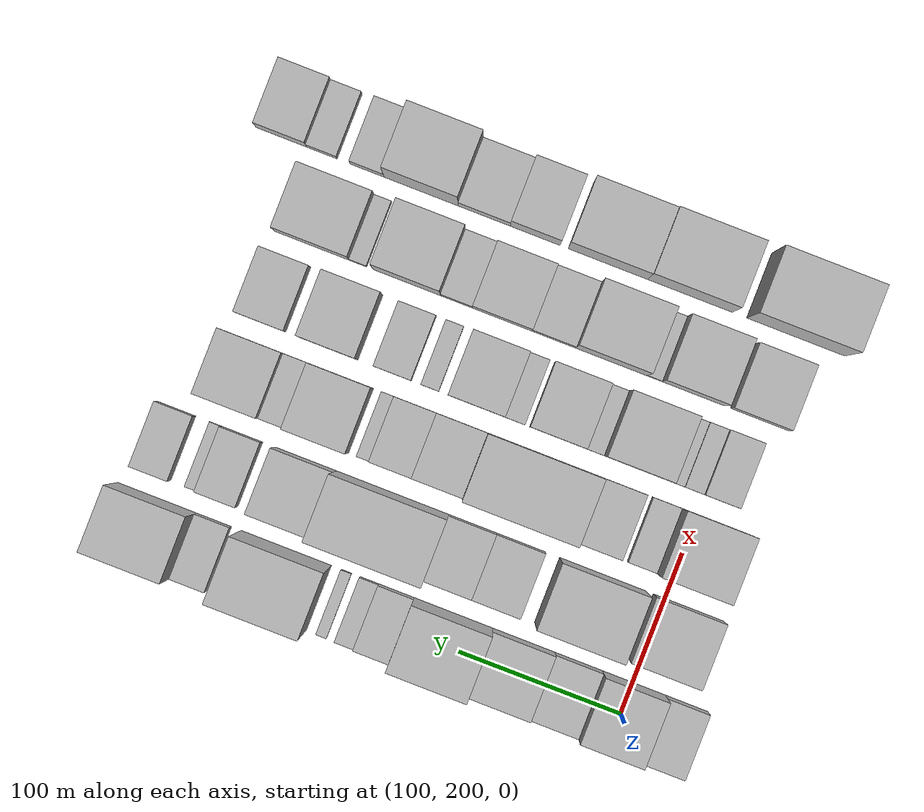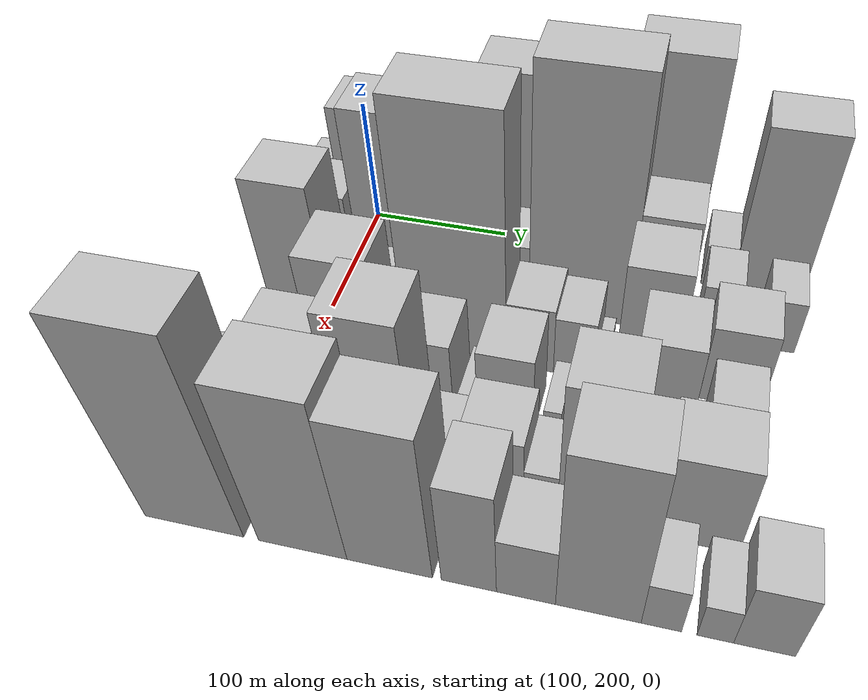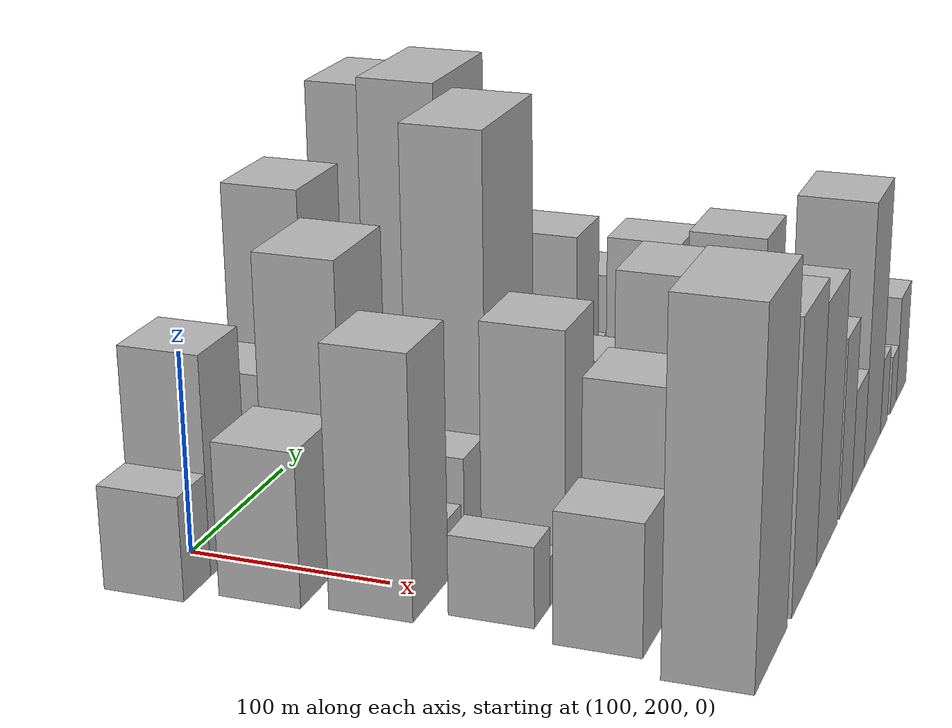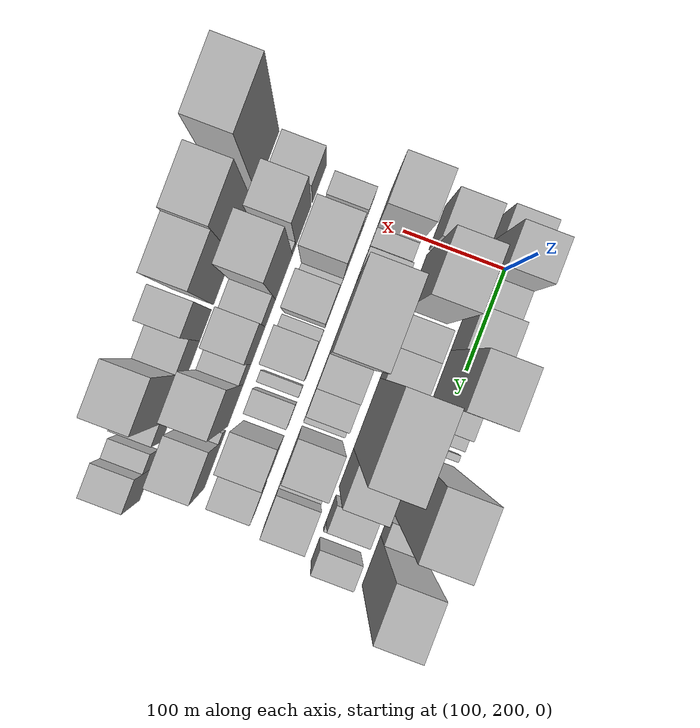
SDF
<sdf version="1.6">
 <world name="default">
  <model name="building_30">
   <static>1</static>
   <pose>100.0000 166.9720 0 0.000000 0.000000 0.000000</pose>
   <link name="link">
    <pose>0 0 25.50 0 0 0</pose>
    <collision name="collision"><geometry><box><size>40.0000 26.2428 51.0000</size></box></geometry></collision>
    <visual name="visual">
     <cast_shadows>0</cast_shadows>
     <geometry><box><size>40.0000 26.2428 51.0000</size></box></geometry>
     <material>
      <script>
       <uri>model://HANNAS_wall/materials/scripts</uri>
       <uri>model://HANNAS_wall/materials/textures</uri>
       <name>vrc/HANNAS_wall</name>
      </script>
     </material>
    </visual>
   </link>
  </model>
  <model name="building_31">
   <static>1</static>
   <pose>100.0000 199.5539 0 0.000000 0.000000 0.000000</pose>
   <link name="link">
    <pose>0 0 54.00 0 0 0</pose>
    <collision name="collision"><geometry><box><size>40.0000 38.9211 108.0000</size></box></geometry></collision>
    <visual name="visual">
     <cast_shadows>0</cast_shadows>
     <geometry><box><size>40.0000 38.9211 108.0000</size></box></geometry>
     <material>
      <script>
       <uri>model://HANNAS_wall/materials/scripts</uri>
       <uri>model://HANNAS_wall/materials/textures</uri>
       <name>vrc/HANNAS_wall</name>
      </script>
     </material>
    </visual>
   </link>
  </model>
  <model name="building_32">
   <static>1</static>
   <pose>100.0000 233.7034 0 0.000000 0.000000 0.000000</pose>
   <link name="link">
    <pose>0 0 25.50 0 0 0</pose>
    <collision name="collision"><geometry><box><size>40.0000 29.3780 51.0000</size></box></geometry></collision>
    <visual name="visual">
     <cast_shadows>0</cast_shadows>
     <geometry><box><size>40.0000 29.3780 51.0000</size></box></geometry>
     <material>
      <script>
       <uri>model://HANNAS_wall/materials/scripts</uri>
       <uri>model://HANNAS_wall/materials/textures</uri>
       <name>vrc/HANNAS_wall</name>
      </script>
     </material>
    </visual>
   </link>
  </model>
  <model name="building_33">
   <static>1</static>
   <pose>100.0000 267.7896 0 0.000000 0.000000 0.000000</pose>
   <link name="link">
    <pose>0 0 36.00 0 0 0</pose>
    <collision name="collision"><geometry><box><size>40.0000 38.7943 72.0000</size></box></geometry></collision>
    <visual name="visual">
     <cast_shadows>0</cast_shadows>
     <geometry><box><size>40.0000 38.7943 72.0000</size></box></geometry>
     <material>
      <script>
       <uri>model://HANNAS_wall/materials/scripts</uri>
       <uri>model://HANNAS_wall/materials/textures</uri>
       <name>vrc/HANNAS_wall</name>
      </script>
     </material>
    </visual>
   </link>
  </model>
  <model name="building_34">
   <static>1</static>
   <pose>100.0000 311.4002 0 0.000000 0.000000 0.000000</pose>
   <link name="link">
    <pose>0 0 76.50 0 0 0</pose>
    <collision name="collision"><geometry><box><size>40.0000 48.4269 153.0000</size></box></geometry></collision>
    <visual name="visual">
     <cast_shadows>0</cast_shadows>
     <geometry><box><size>40.0000 48.4269 153.0000</size></box></geometry>
     <material>
      <script>
       <uri>model://HANNAS_wall/materials/scripts</uri>
       <uri>model://HANNAS_wall/materials/textures</uri>
       <name>vrc/HANNAS_wall</name>
      </script>
     </material>
    </visual>
   </link>
  </model>
  <model name="building_35">
   <static>1</static>
   <pose>100.0000 346.5541 0 0.000000 0.000000 0.000000</pose>
   <link name="link">
    <pose>0 0 21.00 0 0 0</pose>
    <collision name="collision"><geometry><box><size>40.0000 21.8810 42.0000</size></box></geometry></collision>
    <visual name="visual">
     <cast_shadows>0</cast_shadows>
     <geometry><box><size>40.0000 21.8810 42.0000</size></box></geometry>
     <material>
      <script>
       <uri>model://HANNAS_wall/materials/scripts</uri>
       <uri>model://HANNAS_wall/materials/textures</uri>
       <name>vrc/HANNAS_wall</name>
      </script>
     </material>
    </visual>
   </link>
  </model>
  <model name="building_36">
   <static>1</static>
   <pose>100.0000 363.3798 0 0.000000 0.000000 0.000000</pose>
   <link name="link">
    <pose>0 0 12.00 0 0 0</pose>
    <collision name="collision"><geometry><box><size>40.0000 11.7702 24.0000</size></box></geometry></collision>
    <visual name="visual">
     <cast_shadows>0</cast_shadows>
     <geometry><box><size>40.0000 11.7702 24.0000</size></box></geometry>
     <material>
      <script>
       <uri>model://HANNAS_wall/materials/scripts</uri>
       <uri>model://HANNAS_wall/materials/textures</uri>
       <name>vrc/HANNAS_wall</name>
      </script>
     </material>
    </visual>
   </link>
  </model>
  <model name="building_37">
   <static>1</static>
   <pose>100.0000 377.5554 0 0.000000 0.000000 0.000000</pose>
   <link name="link">
    <pose>0 0 7.50 0 0 0</pose>
    <collision name="collision"><geometry><box><size>40.0000 6.5810 15.0000</size></box></geometry></collision>
    <visual name="visual">
     <cast_shadows>0</cast_shadows>
     <geometry><box><size>40.0000 6.5810 15.0000</size></box></geometry>
     <material>
      <script>
       <uri>model://HANNAS_wall/materials/scripts</uri>
       <uri>model://HANNAS_wall/materials/textures</uri>
       <name>vrc/HANNAS_wall</name>
      </script>
     </material>
    </visual>
   </link>
  </model>
  <model name="building_38">
   <static>1</static>
   <pose>100.0000 414.7971 0 0.000000 0.000000 0.000000</pose>
   <link name="link">
    <pose>0 0 90.00 0 0 0</pose>
    <collision name="collision"><geometry><box><size>40.0000 55.9024 180.0000</size></box></geometry></collision>
    <visual name="visual">
     <cast_shadows>0</cast_shadows>
     <geometry><box><size>40.0000 55.9024 180.0000</size></box></geometry>
     <material>
      <script>
       <uri>model://HANNAS_wall/materials/scripts</uri>
       <uri>model://HANNAS_wall/materials/textures</uri>
       <name>vrc/HANNAS_wall</name>
      </script>
     </material>
    </visual>
   </link>
  </model>
  <model name="building_39">
   <static>1</static>
   <pose>100.0000 459.5470 0 0.000000 0.000000 0.000000</pose>
   <link name="link">
    <pose>0 0 18.00 0 0 0</pose>
    <collision name="collision"><geometry><box><size>40.0000 21.5973 36.0000</size></box></geometry></collision>
    <visual name="visual">
     <cast_shadows>0</cast_shadows>
     <geometry><box><size>40.0000 21.5973 36.0000</size></box></geometry>
     <material>
      <script>
       <uri>model://HANNAS_wall/materials/scripts</uri>
       <uri>model://HANNAS_wall/materials/textures</uri>
       <name>vrc/HANNAS_wall</name>
      </script>
     </material>
    </visual>
   </link>
  </model>
  <model name="building_40">
   <static>1</static>
   <pose>100.0000 494.8521 0 0.000000 0.000000 0.000000</pose>
   <link name="link">
    <pose>0 0 69.00 0 0 0</pose>
    <collision name="collision"><geometry><box><size>40.0000 49.0130 138.0000</size></box></geometry></collision>
    <visual name="visual">
     <cast_shadows>0</cast_shadows>
     <geometry><box><size>40.0000 49.0130 138.0000</size></box></geometry>
     <material>
      <script>
       <uri>model://HANNAS_wall/materials/scripts</uri>
       <uri>model://HANNAS_wall/materials/textures</uri>
       <name>vrc/HANNAS_wall</name>
      </script>
     </material>
    </visual>
   </link>
  </model>
  <model name="building_85">
   <static>1</static>
   <pose>152.0000 186.0106 0 0.000000 0.000000 0.000000</pose>
   <link name="link">
    <pose>0 0 37.50 0 0 0</pose>
    <collision name="collision"><geometry><box><size>40.0000 43.1847 75.0000</size></box></geometry></collision>
    <visual name="visual">
     <cast_shadows>0</cast_shadows>
     <geometry><box><size>40.0000 43.1847 75.0000</size></box></geometry>
     <material>
      <script>
       <uri>model://HANNAS_wall/materials/scripts</uri>
       <uri>model://HANNAS_wall/materials/textures</uri>
       <name>vrc/HANNAS_wall</name>
      </script>
     </material>
    </visual>
   </link>
  </model>
  <model name="building_86">
   <static>1</static>
   <pose>152.0000 239.1470 0 0.000000 0.000000 0.000000</pose>
   <link name="link">
    <pose>0 0 73.50 0 0 0</pose>
    <collision name="collision"><geometry><box><size>40.0000 53.0880 147.0000</size></box></geometry></collision>
    <visual name="visual">
     <cast_shadows>0</cast_shadows>
     <geometry><box><size>40.0000 53.0880 147.0000</size></box></geometry>
     <material>
      <script>
       <uri>model://HANNAS_wall/materials/scripts</uri>
       <uri>model://HANNAS_wall/materials/textures</uri>
       <name>vrc/HANNAS_wall</name>
      </script>
     </material>
    </visual>
   </link>
  </model>
  <model name="building_87">
   <static>1</static>
   <pose>152.0000 289.6526 0 0.000000 0.000000 0.000000</pose>
   <link name="link">
    <pose>0 0 28.50 0 0 0</pose>
    <collision name="collision"><geometry><box><size>40.0000 29.9232 57.0000</size></box></geometry></collision>
    <visual name="visual">
     <cast_shadows>0</cast_shadows>
     <geometry><box><size>40.0000 29.9232 57.0000</size></box></geometry>
     <material>
      <script>
       <uri>model://HANNAS_wall/materials/scripts</uri>
       <uri>model://HANNAS_wall/materials/textures</uri>
       <name>vrc/HANNAS_wall</name>
      </script>
     </material>
    </visual>
   </link>
  </model>
  <model name="building_88">
   <static>1</static>
   <pose>152.0000 319.4097 0 0.000000 0.000000 0.000000</pose>
   <link name="link">
    <pose>0 0 28.50 0 0 0</pose>
    <collision name="collision"><geometry><box><size>40.0000 29.5909 57.0000</size></box></geometry></collision>
    <visual name="visual">
     <cast_shadows>0</cast_shadows>
     <geometry><box><size>40.0000 29.5909 57.0000</size></box></geometry>
     <material>
      <script>
       <uri>model://HANNAS_wall/materials/scripts</uri>
       <uri>model://HANNAS_wall/materials/textures</uri>
       <name>vrc/HANNAS_wall</name>
      </script>
     </material>
    </visual>
   </link>
  </model>
  <model name="building_89">
   <static>1</static>
   <pose>152.0000 368.9852 0 0.000000 0.000000 0.000000</pose>
   <link name="link">
    <pose>0 0 99.00 0 0 0</pose>
    <collision name="collision"><geometry><box><size>40.0000 69.5601 198.0000</size></box></geometry></collision>
    <visual name="visual">
     <cast_shadows>0</cast_shadows>
     <geometry><box><size>40.0000 69.5601 198.0000</size></box></geometry>
     <material>
      <script>
       <uri>model://HANNAS_wall/materials/scripts</uri>
       <uri>model://HANNAS_wall/materials/textures</uri>
       <name>vrc/HANNAS_wall</name>
      </script>
     </material>
    </visual>
   </link>
  </model>
  <model name="building_90">
   <static>1</static>
   <pose>152.0000 422.6692 0 0.000000 0.000000 0.000000</pose>
   <link name="link">
    <pose>0 0 49.50 0 0 0</pose>
    <collision name="collision"><geometry><box><size>40.0000 37.8078 99.0000</size></box></geometry></collision>
    <visual name="visual">
     <cast_shadows>0</cast_shadows>
     <geometry><box><size>40.0000 37.8078 99.0000</size></box></geometry>
     <material>
      <script>
       <uri>model://HANNAS_wall/materials/scripts</uri>
       <uri>model://HANNAS_wall/materials/textures</uri>
       <name>vrc/HANNAS_wall</name>
      </script>
     </material>
    </visual>
   </link>
  </model>
  <model name="building_91">
   <static>1</static>
   <pose>152.0000 462.1585 0 0.000000 0.000000 0.000000</pose>
   <link name="link">
    <pose>0 0 24.00 0 0 0</pose>
    <collision name="collision"><geometry><box><size>40.0000 25.1708 48.0000</size></box></geometry></collision>
    <visual name="visual">
     <cast_shadows>0</cast_shadows>
     <geometry><box><size>40.0000 25.1708 48.0000</size></box></geometry>
     <material>
      <script>
       <uri>model://HANNAS_wall/materials/scripts</uri>
       <uri>model://HANNAS_wall/materials/textures</uri>
       <name>vrc/HANNAS_wall</name>
      </script>
     </material>
    </visual>
   </link>
  </model>
  <model name="building_92">
   <static>1</static>
   <pose>152.0000 478.4570 0 0.000000 0.000000 0.000000</pose>
   <link name="link">
    <pose>0 0 7.50 0 0 0</pose>
    <collision name="collision"><geometry><box><size>40.0000 7.4263 15.0000</size></box></geometry></collision>
    <visual name="visual">
     <cast_shadows>0</cast_shadows>
     <geometry><box><size>40.0000 7.4263 15.0000</size></box></geometry>
     <material>
      <script>
       <uri>model://HANNAS_wall/materials/scripts</uri>
       <uri>model://HANNAS_wall/materials/textures</uri>
       <name>vrc/HANNAS_wall</name>
      </script>
     </material>
    </visual>
   </link>
  </model>
  <model name="building_93">
   <static>1</static>
   <pose>152.0000 502.9970 0 0.000000 0.000000 0.000000</pose>
   <link name="link">
    <pose>0 0 22.50 0 0 0</pose>
    <collision name="collision"><geometry><box><size>40.0000 23.6538 45.0000</size></box></geometry></collision>
    <visual name="visual">
     <cast_shadows>0</cast_shadows>
     <geometry><box><size>40.0000 23.6538 45.0000</size></box></geometry>
     <material>
      <script>
       <uri>model://HANNAS_wall/materials/scripts</uri>
       <uri>model://HANNAS_wall/materials/textures</uri>
       <name>vrc/HANNAS_wall</name>
      </script>
     </material>
    </visual>
   </link>
  </model>
  <model name="building_134">
   <static>1</static>
   <pose>204.0000 189.3628 0 0.000000 0.000000 0.000000</pose>
   <link name="link">
    <pose>0 0 63.00 0 0 0</pose>
    <collision name="collision"><geometry><box><size>40.0000 42.7642 126.0000</size></box></geometry></collision>
    <visual name="visual">
     <cast_shadows>0</cast_shadows>
     <geometry><box><size>40.0000 42.7642 126.0000</size></box></geometry>
     <material>
      <script>
       <uri>model://HANNAS_wall/materials/scripts</uri>
       <uri>model://HANNAS_wall/materials/textures</uri>
       <name>vrc/HANNAS_wall</name>
      </script>
     </material>
    </visual>
   </link>
  </model>
  <model name="building_135">
   <static>1</static>
   <pose>204.0000 219.5878 0 0.000000 0.000000 0.000000</pose>
   <link name="link">
    <pose>0 0 15.00 0 0 0</pose>
    <collision name="collision"><geometry><box><size>40.0000 17.6857 30.0000</size></box></geometry></collision>
    <visual name="visual">
     <cast_shadows>0</cast_shadows>
     <geometry><box><size>40.0000 17.6857 30.0000</size></box></geometry>
     <material>
      <script>
       <uri>model://HANNAS_wall/materials/scripts</uri>
       <uri>model://HANNAS_wall/materials/textures</uri>
       <name>vrc/HANNAS_wall</name>
      </script>
     </material>
    </visual>
   </link>
  </model>
  <model name="building_136">
   <static>1</static>
   <pose>204.0000 246.8222 0 0.000000 0.000000 0.000000</pose>
   <link name="link">
    <pose>0 0 25.50 0 0 0</pose>
    <collision name="collision"><geometry><box><size>40.0000 28.7830 51.0000</size></box></geometry></collision>
    <visual name="visual">
     <cast_shadows>0</cast_shadows>
     <geometry><box><size>40.0000 28.7830 51.0000</size></box></geometry>
     <material>
      <script>
       <uri>model://HANNAS_wall/materials/scripts</uri>
       <uri>model://HANNAS_wall/materials/textures</uri>
       <name>vrc/HANNAS_wall</name>
      </script>
     </material>
    </visual>
   </link>
  </model>
  <model name="building_137">
   <static>1</static>
   <pose>204.0000 295.7391 0 0.000000 0.000000 0.000000</pose>
   <link name="link">
    <pose>0 0 99.00 0 0 0</pose>
    <collision name="collision"><geometry><box><size>40.0000 69.0508 198.0000</size></box></geometry></collision>
    <visual name="visual">
     <cast_shadows>0</cast_shadows>
     <geometry><box><size>40.0000 69.0508 198.0000</size></box></geometry>
     <material>
      <script>
       <uri>model://HANNAS_wall/materials/scripts</uri>
       <uri>model://HANNAS_wall/materials/textures</uri>
       <name>vrc/HANNAS_wall</name>
      </script>
     </material>
    </visual>
   </link>
  </model>
  <model name="building_138">
   <static>1</static>
   <pose>204.0000 346.0034 0 0.000000 0.000000 0.000000</pose>
   <link name="link">
    <pose>0 0 28.50 0 0 0</pose>
    <collision name="collision"><geometry><box><size>40.0000 31.4779 57.0000</size></box></geometry></collision>
    <visual name="visual">
     <cast_shadows>0</cast_shadows>
     <geometry><box><size>40.0000 31.4779 57.0000</size></box></geometry>
     <material>
      <script>
       <uri>model://HANNAS_wall/materials/scripts</uri>
       <uri>model://HANNAS_wall/materials/textures</uri>
       <name>vrc/HANNAS_wall</name>
      </script>
     </material>
    </visual>
   </link>
  </model>
  <model name="building_139">
   <static>1</static>
   <pose>204.0000 374.8886 0 0.000000 0.000000 0.000000</pose>
   <link name="link">
    <pose>0 0 25.50 0 0 0</pose>
    <collision name="collision"><geometry><box><size>40.0000 26.2924 51.0000</size></box></geometry></collision>
    <visual name="visual">
     <cast_shadows>0</cast_shadows>
     <geometry><box><size>40.0000 26.2924 51.0000</size></box></geometry>
     <material>
      <script>
       <uri>model://HANNAS_wall/materials/scripts</uri>
       <uri>model://HANNAS_wall/materials/textures</uri>
       <name>vrc/HANNAS_wall</name>
      </script>
     </material>
    </visual>
   </link>
  </model>
  <model name="building_140">
   <static>1</static>
   <pose>204.0000 392.0726 0 0.000000 0.000000 0.000000</pose>
   <link name="link">
    <pose>0 0 9.00 0 0 0</pose>
    <collision name="collision"><geometry><box><size>40.0000 8.0756 18.0000</size></box></geometry></collision>
    <visual name="visual">
     <cast_shadows>0</cast_shadows>
     <geometry><box><size>40.0000 8.0756 18.0000</size></box></geometry>
     <material>
      <script>
       <uri>model://HANNAS_wall/materials/scripts</uri>
       <uri>model://HANNAS_wall/materials/textures</uri>
       <name>vrc/HANNAS_wall</name>
      </script>
     </material>
    </visual>
   </link>
  </model>
  <model name="building_141">
   <static>1</static>
   <pose>204.0000 420.4594 0 0.000000 0.000000 0.000000</pose>
   <link name="link">
    <pose>0 0 52.50 0 0 0</pose>
    <collision name="collision"><geometry><box><size>40.0000 38.6981 105.0000</size></box></geometry></collision>
    <visual name="visual">
     <cast_shadows>0</cast_shadows>
     <geometry><box><size>40.0000 38.6981 105.0000</size></box></geometry>
     <material>
      <script>
       <uri>model://HANNAS_wall/materials/scripts</uri>
       <uri>model://HANNAS_wall/materials/textures</uri>
       <name>vrc/HANNAS_wall</name>
      </script>
     </material>
    </visual>
   </link>
  </model>
  <model name="building_142">
   <static>1</static>
   <pose>204.0000 448.0765 0 0.000000 0.000000 0.000000</pose>
   <link name="link">
    <pose>0 0 16.50 0 0 0</pose>
    <collision name="collision"><geometry><box><size>40.0000 16.5360 33.0000</size></box></geometry></collision>
    <visual name="visual">
     <cast_shadows>0</cast_shadows>
     <geometry><box><size>40.0000 16.5360 33.0000</size></box></geometry>
     <material>
      <script>
       <uri>model://HANNAS_wall/materials/scripts</uri>
       <uri>model://HANNAS_wall/materials/textures</uri>
       <name>vrc/HANNAS_wall</name>
      </script>
     </material>
    </visual>
   </link>
  </model>
  <model name="building_143">
   <static>1</static>
   <pose>204.0000 475.9613 0 0.000000 0.000000 0.000000</pose>
   <link name="link">
    <pose>0 0 33.00 0 0 0</pose>
    <collision name="collision"><geometry><box><size>40.0000 39.2336 66.0000</size></box></geometry></collision>
    <visual name="visual">
     <cast_shadows>0</cast_shadows>
     <geometry><box><size>40.0000 39.2336 66.0000</size></box></geometry>
     <material>
      <script>
       <uri>model://HANNAS_wall/materials/scripts</uri>
       <uri>model://HANNAS_wall/materials/textures</uri>
       <name>vrc/HANNAS_wall</name>
      </script>
     </material>
    </visual>
   </link>
  </model>
  <model name="building_187">
   <static>1</static>
   <pose>256.0000 190.5748 0 0.000000 0.000000 0.000000</pose>
   <link name="link">
    <pose>0 0 19.50 0 0 0</pose>
    <collision name="collision"><geometry><box><size>40.0000 21.7503 39.0000</size></box></geometry></collision>
    <visual name="visual">
     <cast_shadows>0</cast_shadows>
     <geometry><box><size>40.0000 21.7503 39.0000</size></box></geometry>
     <material>
      <script>
       <uri>model://HANNAS_wall/materials/scripts</uri>
       <uri>model://HANNAS_wall/materials/textures</uri>
       <name>vrc/HANNAS_wall</name>
      </script>
     </material>
    </visual>
   </link>
  </model>
  <model name="building_188">
   <static>1</static>
   <pose>256.0000 207.4193 0 0.000000 0.000000 0.000000</pose>
   <link name="link">
    <pose>0 0 12.00 0 0 0</pose>
    <collision name="collision"><geometry><box><size>40.0000 11.9387 24.0000</size></box></geometry></collision>
    <visual name="visual">
     <cast_shadows>0</cast_shadows>
     <geometry><box><size>40.0000 11.9387 24.0000</size></box></geometry>
     <material>
      <script>
       <uri>model://HANNAS_wall/materials/scripts</uri>
       <uri>model://HANNAS_wall/materials/textures</uri>
       <name>vrc/HANNAS_wall</name>
      </script>
     </material>
    </visual>
   </link>
  </model>
  <model name="building_189">
   <static>1</static>
   <pose>256.0000 217.8357 0 0.000000 0.000000 0.000000</pose>
   <link name="link">
    <pose>0 0 9.00 0 0 0</pose>
    <collision name="collision"><geometry><box><size>40.0000 8.8940 18.0000</size></box></geometry></collision>
    <visual name="visual">
     <cast_shadows>0</cast_shadows>
     <geometry><box><size>40.0000 8.8940 18.0000</size></box></geometry>
     <material>
      <script>
       <uri>model://HANNAS_wall/materials/scripts</uri>
       <uri>model://HANNAS_wall/materials/textures</uri>
       <name>vrc/HANNAS_wall</name>
      </script>
     </material>
    </visual>
   </link>
  </model>
  <model name="building_190">
   <static>1</static>
   <pose>256.0000 242.8140 0 0.000000 0.000000 0.000000</pose>
   <link name="link">
    <pose>0 0 61.50 0 0 0</pose>
    <collision name="collision"><geometry><box><size>40.0000 41.0627 123.0000</size></box></geometry></collision>
    <visual name="visual">
     <cast_shadows>0</cast_shadows>
     <geometry><box><size>40.0000 41.0627 123.0000</size></box></geometry>
     <material>
      <script>
       <uri>model://HANNAS_wall/materials/scripts</uri>
       <uri>model://HANNAS_wall/materials/textures</uri>
       <name>vrc/HANNAS_wall</name>
      </script>
     </material>
    </visual>
   </link>
  </model>
  <model name="building_191">
   <static>1</static>
   <pose>256.0000 268.8231 0 0.000000 0.000000 0.000000</pose>
   <link name="link">
    <pose>0 0 12.00 0 0 0</pose>
    <collision name="collision"><geometry><box><size>40.0000 10.9556 24.0000</size></box></geometry></collision>
    <visual name="visual">
     <cast_shadows>0</cast_shadows>
     <geometry><box><size>40.0000 10.9556 24.0000</size></box></geometry>
     <material>
      <script>
       <uri>model://HANNAS_wall/materials/scripts</uri>
       <uri>model://HANNAS_wall/materials/textures</uri>
       <name>vrc/HANNAS_wall</name>
      </script>
     </material>
    </visual>
   </link>
  </model>
  <model name="building_192">
   <static>1</static>
   <pose>256.0000 291.7153 0 0.000000 0.000000 0.000000</pose>
   <link name="link">
    <pose>0 0 34.50 0 0 0</pose>
    <collision name="collision"><geometry><box><size>40.0000 34.8289 69.0000</size></box></geometry></collision>
    <visual name="visual">
     <cast_shadows>0</cast_shadows>
     <geometry><box><size>40.0000 34.8289 69.0000</size></box></geometry>
     <material>
      <script>
       <uri>model://HANNAS_wall/materials/scripts</uri>
       <uri>model://HANNAS_wall/materials/textures</uri>
       <name>vrc/HANNAS_wall</name>
      </script>
     </material>
    </visual>
   </link>
  </model>
  <model name="building_193">
   <static>1</static>
   <pose>256.0000 318.2530 0 0.000000 0.000000 0.000000</pose>
   <link name="link">
    <pose>0 0 13.50 0 0 0</pose>
    <collision name="collision"><geometry><box><size>40.0000 12.2465 27.0000</size></box></geometry></collision>
    <visual name="visual">
     <cast_shadows>0</cast_shadows>
     <geometry><box><size>40.0000 12.2465 27.0000</size></box></geometry>
     <material>
      <script>
       <uri>model://HANNAS_wall/materials/scripts</uri>
       <uri>model://HANNAS_wall/materials/textures</uri>
       <name>vrc/HANNAS_wall</name>
      </script>
     </material>
    </visual>
   </link>
  </model>
  <model name="building_194">
   <static>1</static>
   <pose>256.0000 341.8625 0 0.000000 0.000000 0.000000</pose>
   <link name="link">
    <pose>0 0 34.50 0 0 0</pose>
    <collision name="collision"><geometry><box><size>40.0000 34.9725 69.0000</size></box></geometry></collision>
    <visual name="visual">
     <cast_shadows>0</cast_shadows>
     <geometry><box><size>40.0000 34.9725 69.0000</size></box></geometry>
     <material>
      <script>
       <uri>model://HANNAS_wall/materials/scripts</uri>
       <uri>model://HANNAS_wall/materials/textures</uri>
       <name>vrc/HANNAS_wall</name>
      </script>
     </material>
    </visual>
   </link>
  </model>
  <model name="building_195">
   <static>1</static>
   <pose>256.0000 370.8589 0 0.000000 0.000000 0.000000</pose>
   <link name="link">
    <pose>0 0 13.50 0 0 0</pose>
    <collision name="collision"><geometry><box><size>40.0000 11.0202 27.0000</size></box></geometry></collision>
    <visual name="visual">
     <cast_shadows>0</cast_shadows>
     <geometry><box><size>40.0000 11.0202 27.0000</size></box></geometry>
     <material>
      <script>
       <uri>model://HANNAS_wall/materials/scripts</uri>
       <uri>model://HANNAS_wall/materials/textures</uri>
       <name>vrc/HANNAS_wall</name>
      </script>
     </material>
    </visual>
   </link>
  </model>
  <model name="building_196">
   <static>1</static>
   <pose>256.0000 393.9492 0 0.000000 0.000000 0.000000</pose>
   <link name="link">
    <pose>0 0 19.50 0 0 0</pose>
    <collision name="collision"><geometry><box><size>40.0000 23.1604 39.0000</size></box></geometry></collision>
    <visual name="visual">
     <cast_shadows>0</cast_shadows>
     <geometry><box><size>40.0000 23.1604 39.0000</size></box></geometry>
     <material>
      <script>
       <uri>model://HANNAS_wall/materials/scripts</uri>
       <uri>model://HANNAS_wall/materials/textures</uri>
       <name>vrc/HANNAS_wall</name>
      </script>
     </material>
    </visual>
   </link>
  </model>
  <model name="building_197">
   <static>1</static>
   <pose>256.0000 433.3725 0 0.000000 0.000000 0.000000</pose>
   <link name="link">
    <pose>0 0 51.00 0 0 0</pose>
    <collision name="collision"><geometry><box><size>40.0000 35.6863 102.0000</size></box></geometry></collision>
    <visual name="visual">
     <cast_shadows>0</cast_shadows>
     <geometry><box><size>40.0000 35.6863 102.0000</size></box></geometry>
     <material>
      <script>
       <uri>model://HANNAS_wall/materials/scripts</uri>
       <uri>model://HANNAS_wall/materials/textures</uri>
       <name>vrc/HANNAS_wall</name>
      </script>
     </material>
    </visual>
   </link>
  </model>
  <model name="building_198">
   <static>1</static>
   <pose>256.0000 475.5776 0 0.000000 0.000000 0.000000</pose>
   <link name="link">
    <pose>0 0 27.00 0 0 0</pose>
    <collision name="collision"><geometry><box><size>40.0000 30.7239 54.0000</size></box></geometry></collision>
    <visual name="visual">
     <cast_shadows>0</cast_shadows>
     <geometry><box><size>40.0000 30.7239 54.0000</size></box></geometry>
     <material>
      <script>
       <uri>model://HANNAS_wall/materials/scripts</uri>
       <uri>model://HANNAS_wall/materials/textures</uri>
       <name>vrc/HANNAS_wall</name>
      </script>
     </material>
    </visual>
   </link>
  </model>
  <model name="building_233">
   <static>1</static>
   <pose>308.0000 186.9494 0 0.000000 0.000000 0.000000</pose>
   <link name="link">
    <pose>0 0 31.50 0 0 0</pose>
    <collision name="collision"><geometry><box><size>40.0000 35.7312 63.0000</size></box></geometry></collision>
    <visual name="visual">
     <cast_shadows>0</cast_shadows>
     <geometry><box><size>40.0000 35.7312 63.0000</size></box></geometry>
     <material>
      <script>
       <uri>model://HANNAS_wall/materials/scripts</uri>
       <uri>model://HANNAS_wall/materials/textures</uri>
       <name>vrc/HANNAS_wall</name>
      </script>
     </material>
    </visual>
   </link>
  </model>
  <model name="building_234">
   <static>1</static>
   <pose>308.0000 228.1732 0 0.000000 0.000000 0.000000</pose>
   <link name="link">
    <pose>0 0 54.00 0 0 0</pose>
    <collision name="collision"><geometry><box><size>40.0000 38.7164 108.0000</size></box></geometry></collision>
    <visual name="visual">
     <cast_shadows>0</cast_shadows>
     <geometry><box><size>40.0000 38.7164 108.0000</size></box></geometry>
     <material>
      <script>
       <uri>model://HANNAS_wall/materials/scripts</uri>
       <uri>model://HANNAS_wall/materials/textures</uri>
       <name>vrc/HANNAS_wall</name>
      </script>
     </material>
    </visual>
   </link>
  </model>
  <model name="building_235">
   <static>1</static>
   <pose>308.0000 252.1910 0 0.000000 0.000000 0.000000</pose>
   <link name="link">
    <pose>0 0 10.50 0 0 0</pose>
    <collision name="collision"><geometry><box><size>40.0000 9.3191 21.0000</size></box></geometry></collision>
    <visual name="visual">
     <cast_shadows>0</cast_shadows>
     <geometry><box><size>40.0000 9.3191 21.0000</size></box></geometry>
     <material>
      <script>
       <uri>model://HANNAS_wall/materials/scripts</uri>
       <uri>model://HANNAS_wall/materials/textures</uri>
       <name>vrc/HANNAS_wall</name>
      </script>
     </material>
    </visual>
   </link>
  </model>
  <model name="building_236">
   <static>1</static>
   <pose>308.0000 278.7939 0 0.000000 0.000000 0.000000</pose>
   <link name="link">
    <pose>0 0 70.50 0 0 0</pose>
    <collision name="collision"><geometry><box><size>40.0000 43.8867 141.0000</size></box></geometry></collision>
    <visual name="visual">
     <cast_shadows>0</cast_shadows>
     <geometry><box><size>40.0000 43.8867 141.0000</size></box></geometry>
     <material>
      <script>
       <uri>model://HANNAS_wall/materials/scripts</uri>
       <uri>model://HANNAS_wall/materials/textures</uri>
       <name>vrc/HANNAS_wall</name>
      </script>
     </material>
    </visual>
   </link>
  </model>
  <model name="building_237">
   <static>1</static>
   <pose>308.0000 314.1981 0 0.000000 0.000000 0.000000</pose>
   <link name="link">
    <pose>0 0 22.50 0 0 0</pose>
    <collision name="collision"><geometry><box><size>40.0000 26.9218 45.0000</size></box></geometry></collision>
    <visual name="visual">
     <cast_shadows>0</cast_shadows>
     <geometry><box><size>40.0000 26.9218 45.0000</size></box></geometry>
     <material>
      <script>
       <uri>model://HANNAS_wall/materials/scripts</uri>
       <uri>model://HANNAS_wall/materials/textures</uri>
       <name>vrc/HANNAS_wall</name>
      </script>
     </material>
    </visual>
   </link>
  </model>
  <model name="building_238">
   <static>1</static>
   <pose>308.0000 346.1631 0 0.000000 0.000000 0.000000</pose>
   <link name="link">
    <pose>0 0 31.50 0 0 0</pose>
    <collision name="collision"><geometry><box><size>40.0000 37.0082 63.0000</size></box></geometry></collision>
    <visual name="visual">
     <cast_shadows>0</cast_shadows>
     <geometry><box><size>40.0000 37.0082 63.0000</size></box></geometry>
     <material>
      <script>
       <uri>model://HANNAS_wall/materials/scripts</uri>
       <uri>model://HANNAS_wall/materials/textures</uri>
       <name>vrc/HANNAS_wall</name>
      </script>
     </material>
    </visual>
   </link>
  </model>
  <model name="building_239">
   <static>1</static>
   <pose>308.0000 374.5722 0 0.000000 0.000000 0.000000</pose>
   <link name="link">
    <pose>0 0 19.50 0 0 0</pose>
    <collision name="collision"><geometry><box><size>40.0000 19.8099 39.0000</size></box></geometry></collision>
    <visual name="visual">
     <cast_shadows>0</cast_shadows>
     <geometry><box><size>40.0000 19.8099 39.0000</size></box></geometry>
     <material>
      <script>
       <uri>model://HANNAS_wall/materials/scripts</uri>
       <uri>model://HANNAS_wall/materials/textures</uri>
       <name>vrc/HANNAS_wall</name>
      </script>
     </material>
    </visual>
   </link>
  </model>
  <model name="building_240">
   <static>1</static>
   <pose>308.0000 405.3179 0 0.000000 0.000000 0.000000</pose>
   <link name="link">
    <pose>0 0 60.00 0 0 0</pose>
    <collision name="collision"><geometry><box><size>40.0000 41.6815 120.0000</size></box></geometry></collision>
    <visual name="visual">
     <cast_shadows>0</cast_shadows>
     <geometry><box><size>40.0000 41.6815 120.0000</size></box></geometry>
     <material>
      <script>
       <uri>model://HANNAS_wall/materials/scripts</uri>
       <uri>model://HANNAS_wall/materials/textures</uri>
       <name>vrc/HANNAS_wall</name>
      </script>
     </material>
    </visual>
   </link>
  </model>
  <model name="building_241">
   <static>1</static>
   <pose>308.0000 435.5404 0 0.000000 0.000000 0.000000</pose>
   <link name="link">
    <pose>0 0 12.00 0 0 0</pose>
    <collision name="collision"><geometry><box><size>40.0000 10.7634 24.0000</size></box></geometry></collision>
    <visual name="visual">
     <cast_shadows>0</cast_shadows>
     <geometry><box><size>40.0000 10.7634 24.0000</size></box></geometry>
     <material>
      <script>
       <uri>model://HANNAS_wall/materials/scripts</uri>
       <uri>model://HANNAS_wall/materials/textures</uri>
       <name>vrc/HANNAS_wall</name>
      </script>
     </material>
    </visual>
   </link>
  </model>
  <model name="building_242">
   <static>1</static>
   <pose>308.0000 464.1151 0 0.000000 0.000000 0.000000</pose>
   <link name="link">
    <pose>0 0 39.00 0 0 0</pose>
    <collision name="collision"><geometry><box><size>40.0000 46.3861 78.0000</size></box></geometry></collision>
    <visual name="visual">
     <cast_shadows>0</cast_shadows>
     <geometry><box><size>40.0000 46.3861 78.0000</size></box></geometry>
     <material>
      <script>
       <uri>model://HANNAS_wall/materials/scripts</uri>
       <uri>model://HANNAS_wall/materials/textures</uri>
       <name>vrc/HANNAS_wall</name>
      </script>
     </material>
    </visual>
   </link>
  </model>
  <model name="building_284">
   <static>1</static>
   <pose>360.0000 184.6107 0 0.000000 0.000000 0.000000</pose>
   <link name="link">
    <pose>0 0 85.50 0 0 0</pose>
    <collision name="collision"><geometry><box><size>40.0000 60.6609 171.0000</size></box></geometry></collision>
    <visual name="visual">
     <cast_shadows>0</cast_shadows>
     <geometry><box><size>40.0000 60.6609 171.0000</size></box></geometry>
     <material>
      <script>
       <uri>model://HANNAS_wall/materials/scripts</uri>
       <uri>model://HANNAS_wall/materials/textures</uri>
       <name>vrc/HANNAS_wall</name>
      </script>
     </material>
    </visual>
   </link>
  </model>
  <model name="building_285">
   <static>1</static>
   <pose>360.0000 250.1850 0 0.000000 0.000000 0.000000</pose>
   <link name="link">
    <pose>0 0 70.50 0 0 0</pose>
    <collision name="collision"><geometry><box><size>40.0000 52.4877 141.0000</size></box></geometry></collision>
    <visual name="visual">
     <cast_shadows>0</cast_shadows>
     <geometry><box><size>40.0000 52.4877 141.0000</size></box></geometry>
     <material>
      <script>
       <uri>model://HANNAS_wall/materials/scripts</uri>
       <uri>model://HANNAS_wall/materials/textures</uri>
       <name>vrc/HANNAS_wall</name>
      </script>
     </material>
    </visual>
   </link>
  </model>
  <model name="building_286">
   <static>1</static>
   <pose>360.0000 300.9858 0 0.000000 0.000000 0.000000</pose>
   <link name="link">
    <pose>0 0 64.50 0 0 0</pose>
    <collision name="collision"><geometry><box><size>40.0000 49.1140 129.0000</size></box></geometry></collision>
    <visual name="visual">
     <cast_shadows>0</cast_shadows>
     <geometry><box><size>40.0000 49.1140 129.0000</size></box></geometry>
     <material>
      <script>
       <uri>model://HANNAS_wall/materials/scripts</uri>
       <uri>model://HANNAS_wall/materials/textures</uri>
       <name>vrc/HANNAS_wall</name>
      </script>
     </material>
    </visual>
   </link>
  </model>
  <model name="building_287">
   <static>1</static>
   <pose>360.0000 345.9575 0 0.000000 0.000000 0.000000</pose>
   <link name="link">
    <pose>0 0 46.50 0 0 0</pose>
    <collision name="collision"><geometry><box><size>40.0000 30.8293 93.0000</size></box></geometry></collision>
    <visual name="visual">
     <cast_shadows>0</cast_shadows>
     <geometry><box><size>40.0000 30.8293 93.0000</size></box></geometry>
     <material>
      <script>
       <uri>model://HANNAS_wall/materials/scripts</uri>
       <uri>model://HANNAS_wall/materials/textures</uri>
       <name>vrc/HANNAS_wall</name>
      </script>
     </material>
    </visual>
   </link>
  </model>
  <model name="building_288">
   <static>1</static>
   <pose>360.0000 377.5314 0 0.000000 0.000000 0.000000</pose>
   <link name="link">
    <pose>0 0 27.00 0 0 0</pose>
    <collision name="collision"><geometry><box><size>40.0000 32.3186 54.0000</size></box></geometry></collision>
    <visual name="visual">
     <cast_shadows>0</cast_shadows>
     <geometry><box><size>40.0000 32.3186 54.0000</size></box></geometry>
     <material>
      <script>
       <uri>model://HANNAS_wall/materials/scripts</uri>
       <uri>model://HANNAS_wall/materials/textures</uri>
       <name>vrc/HANNAS_wall</name>
      </script>
     </material>
    </visual>
   </link>
  </model>
  <model name="building_289">
   <static>1</static>
   <pose>360.0000 416.5941 0 0.000000 0.000000 0.000000</pose>
   <link name="link">
    <pose>0 0 70.50 0 0 0</pose>
    <collision name="collision"><geometry><box><size>40.0000 45.8068 141.0000</size></box></geometry></collision>
    <visual name="visual">
     <cast_shadows>0</cast_shadows>
     <geometry><box><size>40.0000 45.8068 141.0000</size></box></geometry>
     <material>
      <script>
       <uri>model://HANNAS_wall/materials/scripts</uri>
       <uri>model://HANNAS_wall/materials/textures</uri>
       <name>vrc/HANNAS_wall</name>
      </script>
     </material>
    </visual>
   </link>
  </model>
  <model name="building_290">
   <static>1</static>
   <pose>360.0000 450.1051 0 0.000000 0.000000 0.000000</pose>
   <link name="link">
    <pose>0 0 21.00 0 0 0</pose>
    <collision name="collision"><geometry><box><size>40.0000 21.2152 42.0000</size></box></geometry></collision>
    <visual name="visual">
     <cast_shadows>0</cast_shadows>
     <geometry><box><size>40.0000 21.2152 42.0000</size></box></geometry>
     <material>
      <script>
       <uri>model://HANNAS_wall/materials/scripts</uri>
       <uri>model://HANNAS_wall/materials/textures</uri>
       <name>vrc/HANNAS_wall</name>
      </script>
     </material>
    </visual>
   </link>
  </model>
  <model name="building_291">
   <static>1</static>
   <pose>360.0000 478.1331 0 0.000000 0.000000 0.000000</pose>
   <link name="link">
    <pose>0 0 16.50 0 0 0</pose>
    <collision name="collision"><geometry><box><size>40.0000 18.8409 33.0000</size></box></geometry></collision>
    <visual name="visual">
     <cast_shadows>0</cast_shadows>
     <geometry><box><size>40.0000 18.8409 33.0000</size></box></geometry>
     <material>
      <script>
       <uri>model://HANNAS_wall/materials/scripts</uri>
       <uri>model://HANNAS_wall/materials/textures</uri>
       <name>vrc/HANNAS_wall</name>
      </script>
     </material>
    </visual>
   </link>
  </model>
  <model name="building_292">
   <static>1</static>
   <pose>360.0000 503.2377 0 0.000000 0.000000 0.000000</pose>
   <link name="link">
    <pose>0 0 30.00 0 0 0</pose>
    <collision name="collision"><geometry><box><size>40.0000 31.3682 60.0000</size></box></geometry></collision>
    <visual name="visual">
     <cast_shadows>0</cast_shadows>
     <geometry><box><size>40.0000 31.3682 60.0000</size></box></geometry>
     <material>
      <script>
       <uri>model://HANNAS_wall/materials/scripts</uri>
       <uri>model://HANNAS_wall/materials/textures</uri>
       <name>vrc/HANNAS_wall</name>
      </script>
     </material>
    </visual>
   </link>
  </model>
 </world>
</sdf>
